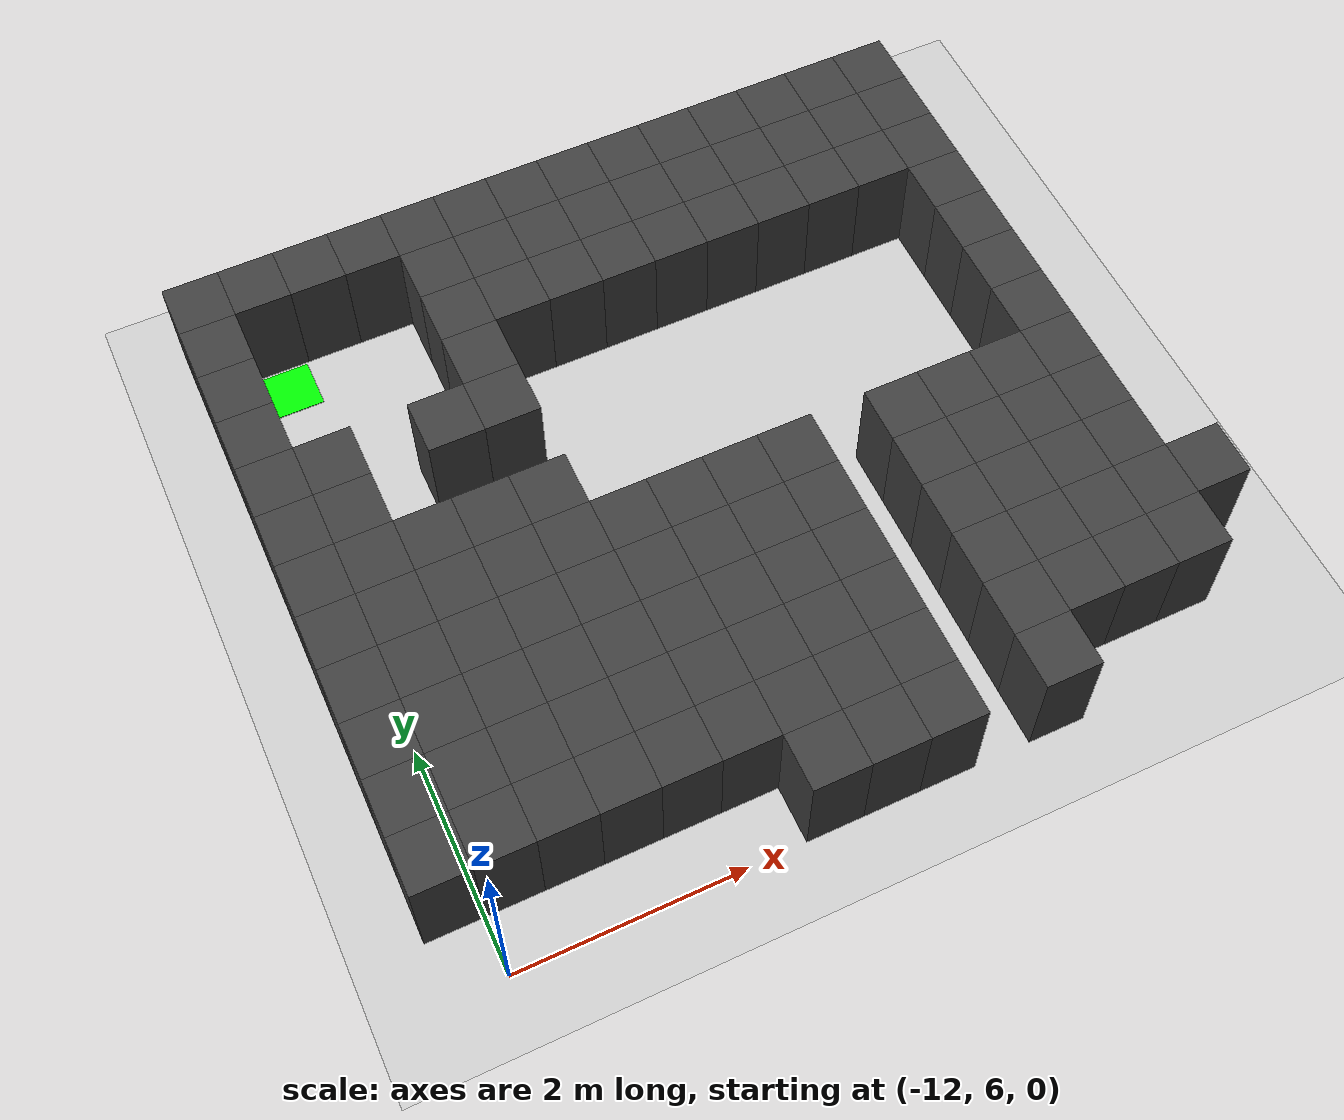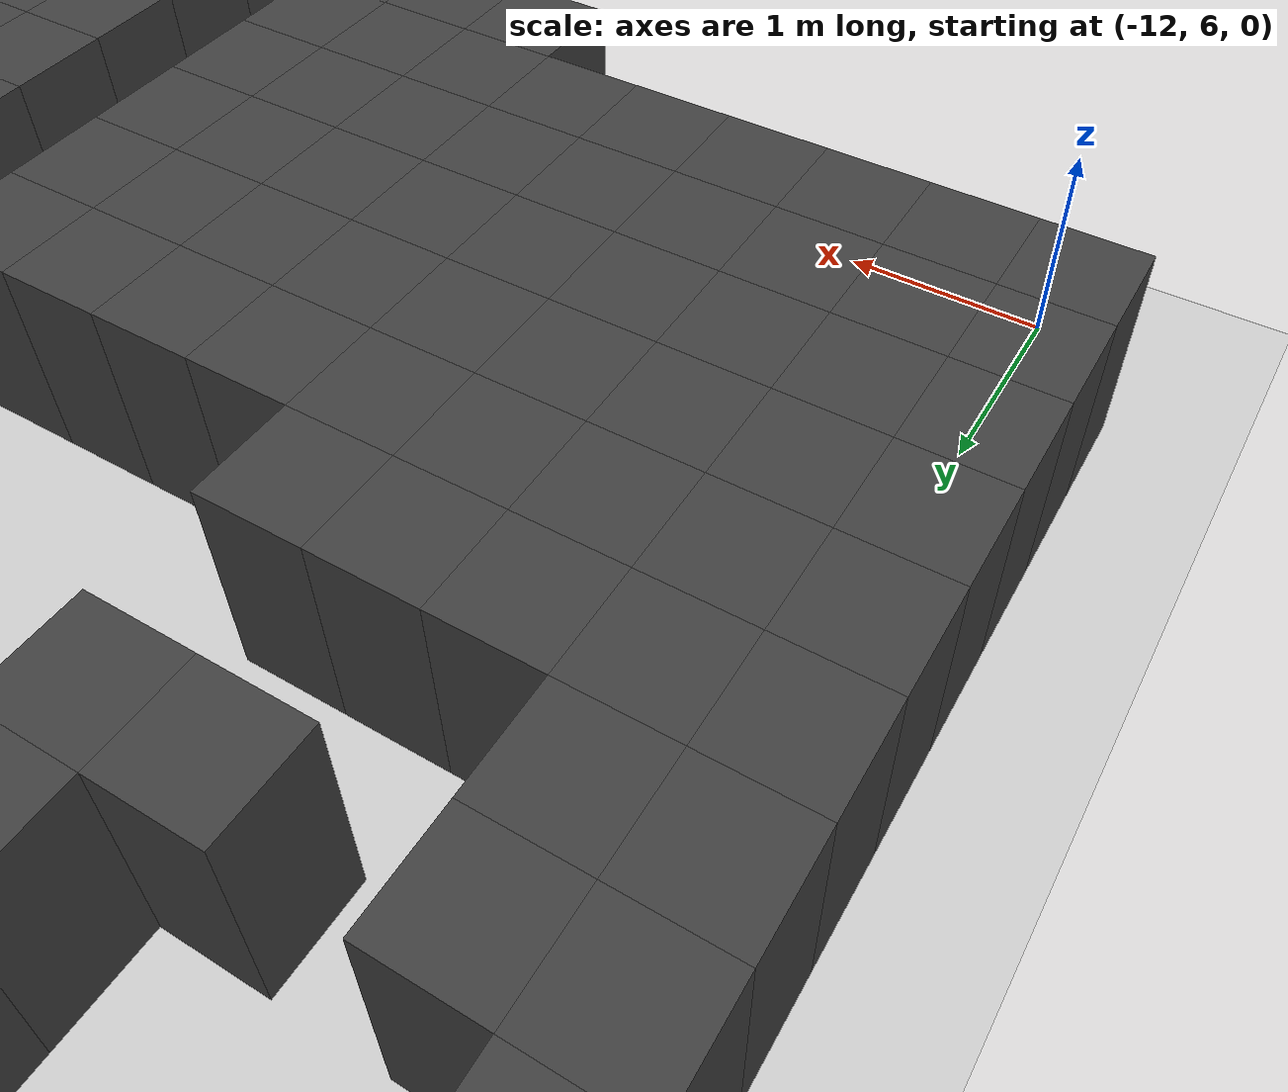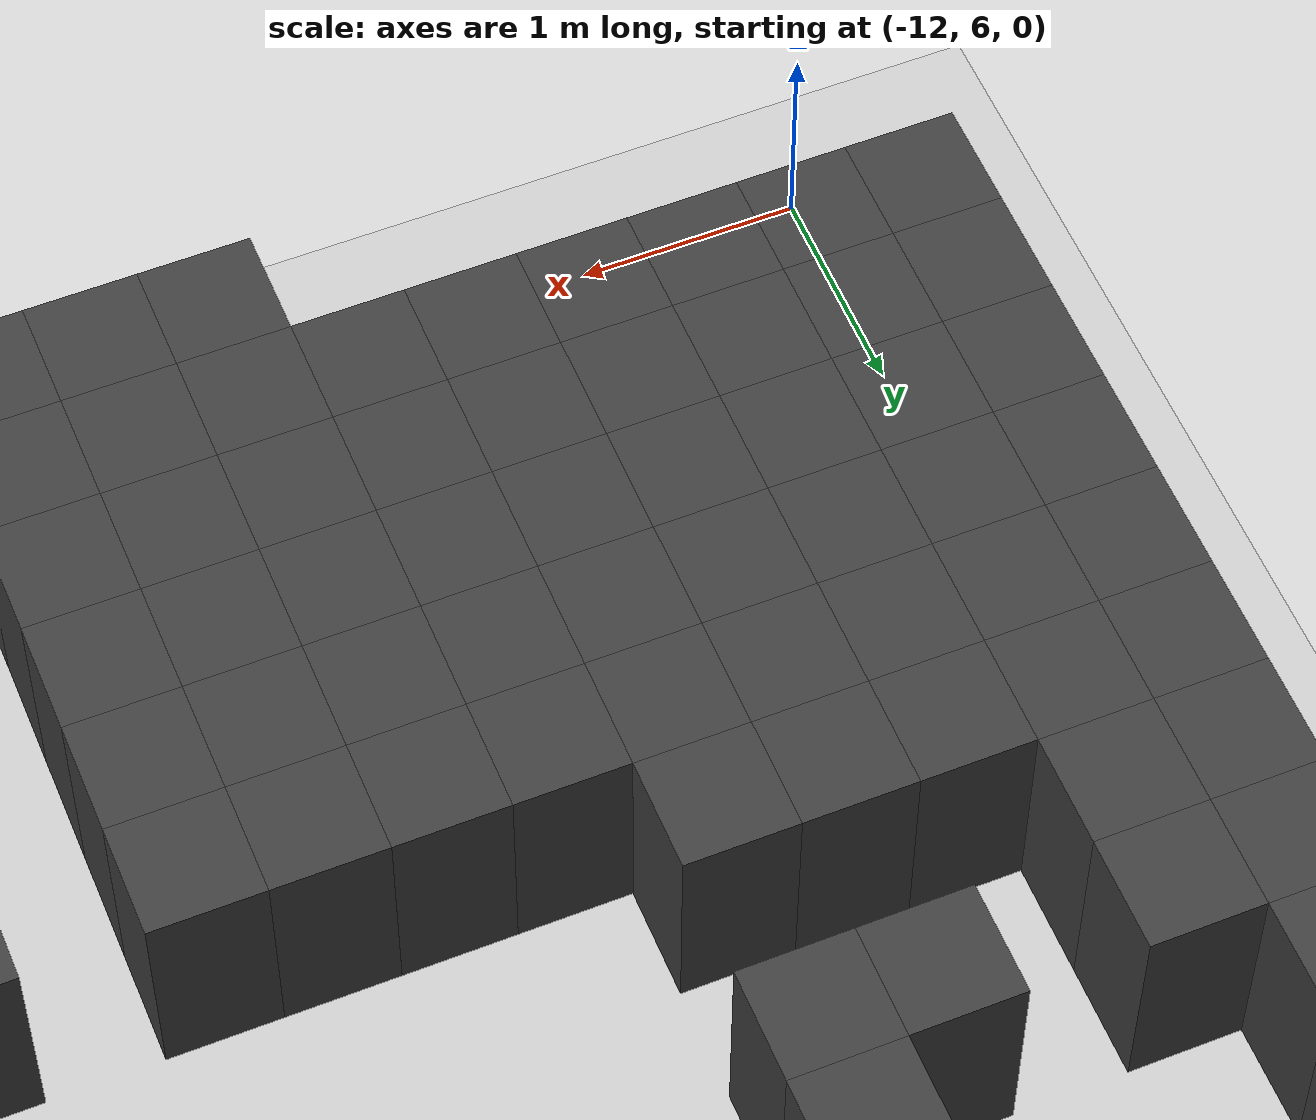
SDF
<sdf version="1.7">
 <world name="map_14668">
  <model name="ground_plane">
   <static>true</static>
   <link name="link">
    <collision name="collision">
     <geometry><plane><normal>0 0 1</normal><size>200 200</size></plane></geometry>
    </collision>
    <visual name="visual">
     <geometry><plane><normal>0 0 1</normal><size>200 200</size></plane></geometry>
     <material><ambient>0.8 0.8 0.8 1</ambient><diffuse>0.8 0.8 0.8 1</diffuse></material>
    </visual>
   </link>
  </model>
  <model name="maze_environment">
   <static>true</static>
   <link name="wall_0">
    <pose>-12.250 12.250 0.500 0 0 0</pose>
    <collision name="col"><geometry><box><size>0.5 0.5 1.0</size></box></geometry></collision>
    <visual name="vis">
     <geometry><box><size>0.5 0.5 1.0</size></box></geometry>
     <material><ambient>0.15 0.15 0.15 1</ambient><diffuse>0.25 0.25 0.25 1</diffuse></material>
    </visual>
   </link>
   <link name="wall_1">
    <pose>-11.750 12.250 0.500 0 0 0</pose>
    <collision name="col"><geometry><box><size>0.5 0.5 1.0</size></box></geometry></collision>
    <visual name="vis">
     <geometry><box><size>0.5 0.5 1.0</size></box></geometry>
     <material><ambient>0.15 0.15 0.15 1</ambient><diffuse>0.25 0.25 0.25 1</diffuse></material>
    </visual>
   </link>
   <link name="wall_2">
    <pose>-11.250 12.250 0.500 0 0 0</pose>
    <collision name="col"><geometry><box><size>0.5 0.5 1.0</size></box></geometry></collision>
    <visual name="vis">
     <geometry><box><size>0.5 0.5 1.0</size></box></geometry>
     <material><ambient>0.15 0.15 0.15 1</ambient><diffuse>0.25 0.25 0.25 1</diffuse></material>
    </visual>
   </link>
   <link name="wall_3">
    <pose>-10.750 12.250 0.500 0 0 0</pose>
    <collision name="col"><geometry><box><size>0.5 0.5 1.0</size></box></geometry></collision>
    <visual name="vis">
     <geometry><box><size>0.5 0.5 1.0</size></box></geometry>
     <material><ambient>0.15 0.15 0.15 1</ambient><diffuse>0.25 0.25 0.25 1</diffuse></material>
    </visual>
   </link>
   <link name="wall_4">
    <pose>-10.250 12.250 0.500 0 0 0</pose>
    <collision name="col"><geometry><box><size>0.5 0.5 1.0</size></box></geometry></collision>
    <visual name="vis">
     <geometry><box><size>0.5 0.5 1.0</size></box></geometry>
     <material><ambient>0.15 0.15 0.15 1</ambient><diffuse>0.25 0.25 0.25 1</diffuse></material>
    </visual>
   </link>
   <link name="wall_5">
    <pose>-9.750 12.250 0.500 0 0 0</pose>
    <collision name="col"><geometry><box><size>0.5 0.5 1.0</size></box></geometry></collision>
    <visual name="vis">
     <geometry><box><size>0.5 0.5 1.0</size></box></geometry>
     <material><ambient>0.15 0.15 0.15 1</ambient><diffuse>0.25 0.25 0.25 1</diffuse></material>
    </visual>
   </link>
   <link name="wall_6">
    <pose>-9.250 12.250 0.500 0 0 0</pose>
    <collision name="col"><geometry><box><size>0.5 0.5 1.0</size></box></geometry></collision>
    <visual name="vis">
     <geometry><box><size>0.5 0.5 1.0</size></box></geometry>
     <material><ambient>0.15 0.15 0.15 1</ambient><diffuse>0.25 0.25 0.25 1</diffuse></material>
    </visual>
   </link>
   <link name="wall_7">
    <pose>-8.750 12.250 0.500 0 0 0</pose>
    <collision name="col"><geometry><box><size>0.5 0.5 1.0</size></box></geometry></collision>
    <visual name="vis">
     <geometry><box><size>0.5 0.5 1.0</size></box></geometry>
     <material><ambient>0.15 0.15 0.15 1</ambient><diffuse>0.25 0.25 0.25 1</diffuse></material>
    </visual>
   </link>
   <link name="wall_8">
    <pose>-8.250 12.250 0.500 0 0 0</pose>
    <collision name="col"><geometry><box><size>0.5 0.5 1.0</size></box></geometry></collision>
    <visual name="vis">
     <geometry><box><size>0.5 0.5 1.0</size></box></geometry>
     <material><ambient>0.15 0.15 0.15 1</ambient><diffuse>0.25 0.25 0.25 1</diffuse></material>
    </visual>
   </link>
   <link name="wall_9">
    <pose>-7.750 12.250 0.500 0 0 0</pose>
    <collision name="col"><geometry><box><size>0.5 0.5 1.0</size></box></geometry></collision>
    <visual name="vis">
     <geometry><box><size>0.5 0.5 1.0</size></box></geometry>
     <material><ambient>0.15 0.15 0.15 1</ambient><diffuse>0.25 0.25 0.25 1</diffuse></material>
    </visual>
   </link>
   <link name="wall_10">
    <pose>-7.250 12.250 0.500 0 0 0</pose>
    <collision name="col"><geometry><box><size>0.5 0.5 1.0</size></box></geometry></collision>
    <visual name="vis">
     <geometry><box><size>0.5 0.5 1.0</size></box></geometry>
     <material><ambient>0.15 0.15 0.15 1</ambient><diffuse>0.25 0.25 0.25 1</diffuse></material>
    </visual>
   </link>
   <link name="wall_11">
    <pose>-6.750 12.250 0.500 0 0 0</pose>
    <collision name="col"><geometry><box><size>0.5 0.5 1.0</size></box></geometry></collision>
    <visual name="vis">
     <geometry><box><size>0.5 0.5 1.0</size></box></geometry>
     <material><ambient>0.15 0.15 0.15 1</ambient><diffuse>0.25 0.25 0.25 1</diffuse></material>
    </visual>
   </link>
   <link name="wall_12">
    <pose>-6.250 12.250 0.500 0 0 0</pose>
    <collision name="col"><geometry><box><size>0.5 0.5 1.0</size></box></geometry></collision>
    <visual name="vis">
     <geometry><box><size>0.5 0.5 1.0</size></box></geometry>
     <material><ambient>0.15 0.15 0.15 1</ambient><diffuse>0.25 0.25 0.25 1</diffuse></material>
    </visual>
   </link>
   <link name="wall_13">
    <pose>-5.750 12.250 0.500 0 0 0</pose>
    <collision name="col"><geometry><box><size>0.5 0.5 1.0</size></box></geometry></collision>
    <visual name="vis">
     <geometry><box><size>0.5 0.5 1.0</size></box></geometry>
     <material><ambient>0.15 0.15 0.15 1</ambient><diffuse>0.25 0.25 0.25 1</diffuse></material>
    </visual>
   </link>
   <link name="wall_50">
    <pose>-12.250 11.750 0.500 0 0 0</pose>
    <collision name="col"><geometry><box><size>0.5 0.5 1.0</size></box></geometry></collision>
    <visual name="vis">
     <geometry><box><size>0.5 0.5 1.0</size></box></geometry>
     <material><ambient>0.15 0.15 0.15 1</ambient><diffuse>0.25 0.25 0.25 1</diffuse></material>
    </visual>
   </link>
   <link name="wall_51">
    <pose>-10.250 11.750 0.500 0 0 0</pose>
    <collision name="col"><geometry><box><size>0.5 0.5 1.0</size></box></geometry></collision>
    <visual name="vis">
     <geometry><box><size>0.5 0.5 1.0</size></box></geometry>
     <material><ambient>0.15 0.15 0.15 1</ambient><diffuse>0.25 0.25 0.25 1</diffuse></material>
    </visual>
   </link>
   <link name="wall_52">
    <pose>-9.750 11.750 0.500 0 0 0</pose>
    <collision name="col"><geometry><box><size>0.5 0.5 1.0</size></box></geometry></collision>
    <visual name="vis">
     <geometry><box><size>0.5 0.5 1.0</size></box></geometry>
     <material><ambient>0.15 0.15 0.15 1</ambient><diffuse>0.25 0.25 0.25 1</diffuse></material>
    </visual>
   </link>
   <link name="wall_53">
    <pose>-9.250 11.750 0.500 0 0 0</pose>
    <collision name="col"><geometry><box><size>0.5 0.5 1.0</size></box></geometry></collision>
    <visual name="vis">
     <geometry><box><size>0.5 0.5 1.0</size></box></geometry>
     <material><ambient>0.15 0.15 0.15 1</ambient><diffuse>0.25 0.25 0.25 1</diffuse></material>
    </visual>
   </link>
   <link name="wall_54">
    <pose>-8.750 11.750 0.500 0 0 0</pose>
    <collision name="col"><geometry><box><size>0.5 0.5 1.0</size></box></geometry></collision>
    <visual name="vis">
     <geometry><box><size>0.5 0.5 1.0</size></box></geometry>
     <material><ambient>0.15 0.15 0.15 1</ambient><diffuse>0.25 0.25 0.25 1</diffuse></material>
    </visual>
   </link>
   <link name="wall_55">
    <pose>-8.250 11.750 0.500 0 0 0</pose>
    <collision name="col"><geometry><box><size>0.5 0.5 1.0</size></box></geometry></collision>
    <visual name="vis">
     <geometry><box><size>0.5 0.5 1.0</size></box></geometry>
     <material><ambient>0.15 0.15 0.15 1</ambient><diffuse>0.25 0.25 0.25 1</diffuse></material>
    </visual>
   </link>
   <link name="wall_56">
    <pose>-7.750 11.750 0.500 0 0 0</pose>
    <collision name="col"><geometry><box><size>0.5 0.5 1.0</size></box></geometry></collision>
    <visual name="vis">
     <geometry><box><size>0.5 0.5 1.0</size></box></geometry>
     <material><ambient>0.15 0.15 0.15 1</ambient><diffuse>0.25 0.25 0.25 1</diffuse></material>
    </visual>
   </link>
   <link name="wall_57">
    <pose>-7.250 11.750 0.500 0 0 0</pose>
    <collision name="col"><geometry><box><size>0.5 0.5 1.0</size></box></geometry></collision>
    <visual name="vis">
     <geometry><box><size>0.5 0.5 1.0</size></box></geometry>
     <material><ambient>0.15 0.15 0.15 1</ambient><diffuse>0.25 0.25 0.25 1</diffuse></material>
    </visual>
   </link>
   <link name="wall_58">
    <pose>-6.750 11.750 0.500 0 0 0</pose>
    <collision name="col"><geometry><box><size>0.5 0.5 1.0</size></box></geometry></collision>
    <visual name="vis">
     <geometry><box><size>0.5 0.5 1.0</size></box></geometry>
     <material><ambient>0.15 0.15 0.15 1</ambient><diffuse>0.25 0.25 0.25 1</diffuse></material>
    </visual>
   </link>
   <link name="wall_59">
    <pose>-6.250 11.750 0.500 0 0 0</pose>
    <collision name="col"><geometry><box><size>0.5 0.5 1.0</size></box></geometry></collision>
    <visual name="vis">
     <geometry><box><size>0.5 0.5 1.0</size></box></geometry>
     <material><ambient>0.15 0.15 0.15 1</ambient><diffuse>0.25 0.25 0.25 1</diffuse></material>
    </visual>
   </link>
   <link name="wall_60">
    <pose>-5.750 11.750 0.500 0 0 0</pose>
    <collision name="col"><geometry><box><size>0.5 0.5 1.0</size></box></geometry></collision>
    <visual name="vis">
     <geometry><box><size>0.5 0.5 1.0</size></box></geometry>
     <material><ambient>0.15 0.15 0.15 1</ambient><diffuse>0.25 0.25 0.25 1</diffuse></material>
    </visual>
   </link>
   <link name="wall_97">
    <pose>-12.250 11.250 0.500 0 0 0</pose>
    <collision name="col"><geometry><box><size>0.5 0.5 1.0</size></box></geometry></collision>
    <visual name="vis">
     <geometry><box><size>0.5 0.5 1.0</size></box></geometry>
     <material><ambient>0.15 0.15 0.15 1</ambient><diffuse>0.25 0.25 0.25 1</diffuse></material>
    </visual>
   </link>
   <link name="wall_98">
    <pose>-10.250 11.250 0.500 0 0 0</pose>
    <collision name="col"><geometry><box><size>0.5 0.5 1.0</size></box></geometry></collision>
    <visual name="vis">
     <geometry><box><size>0.5 0.5 1.0</size></box></geometry>
     <material><ambient>0.15 0.15 0.15 1</ambient><diffuse>0.25 0.25 0.25 1</diffuse></material>
    </visual>
   </link>
   <link name="wall_99">
    <pose>-9.750 11.250 0.500 0 0 0</pose>
    <collision name="col"><geometry><box><size>0.5 0.5 1.0</size></box></geometry></collision>
    <visual name="vis">
     <geometry><box><size>0.5 0.5 1.0</size></box></geometry>
     <material><ambient>0.15 0.15 0.15 1</ambient><diffuse>0.25 0.25 0.25 1</diffuse></material>
    </visual>
   </link>
   <link name="wall_100">
    <pose>-9.250 11.250 0.500 0 0 0</pose>
    <collision name="col"><geometry><box><size>0.5 0.5 1.0</size></box></geometry></collision>
    <visual name="vis">
     <geometry><box><size>0.5 0.5 1.0</size></box></geometry>
     <material><ambient>0.15 0.15 0.15 1</ambient><diffuse>0.25 0.25 0.25 1</diffuse></material>
    </visual>
   </link>
   <link name="wall_101">
    <pose>-8.750 11.250 0.500 0 0 0</pose>
    <collision name="col"><geometry><box><size>0.5 0.5 1.0</size></box></geometry></collision>
    <visual name="vis">
     <geometry><box><size>0.5 0.5 1.0</size></box></geometry>
     <material><ambient>0.15 0.15 0.15 1</ambient><diffuse>0.25 0.25 0.25 1</diffuse></material>
    </visual>
   </link>
   <link name="wall_102">
    <pose>-8.250 11.250 0.500 0 0 0</pose>
    <collision name="col"><geometry><box><size>0.5 0.5 1.0</size></box></geometry></collision>
    <visual name="vis">
     <geometry><box><size>0.5 0.5 1.0</size></box></geometry>
     <material><ambient>0.15 0.15 0.15 1</ambient><diffuse>0.25 0.25 0.25 1</diffuse></material>
    </visual>
   </link>
   <link name="wall_103">
    <pose>-7.750 11.250 0.500 0 0 0</pose>
    <collision name="col"><geometry><box><size>0.5 0.5 1.0</size></box></geometry></collision>
    <visual name="vis">
     <geometry><box><size>0.5 0.5 1.0</size></box></geometry>
     <material><ambient>0.15 0.15 0.15 1</ambient><diffuse>0.25 0.25 0.25 1</diffuse></material>
    </visual>
   </link>
   <link name="wall_104">
    <pose>-7.250 11.250 0.500 0 0 0</pose>
    <collision name="col"><geometry><box><size>0.5 0.5 1.0</size></box></geometry></collision>
    <visual name="vis">
     <geometry><box><size>0.5 0.5 1.0</size></box></geometry>
     <material><ambient>0.15 0.15 0.15 1</ambient><diffuse>0.25 0.25 0.25 1</diffuse></material>
    </visual>
   </link>
   <link name="wall_105">
    <pose>-6.750 11.250 0.500 0 0 0</pose>
    <collision name="col"><geometry><box><size>0.5 0.5 1.0</size></box></geometry></collision>
    <visual name="vis">
     <geometry><box><size>0.5 0.5 1.0</size></box></geometry>
     <material><ambient>0.15 0.15 0.15 1</ambient><diffuse>0.25 0.25 0.25 1</diffuse></material>
    </visual>
   </link>
   <link name="wall_106">
    <pose>-6.250 11.250 0.500 0 0 0</pose>
    <collision name="col"><geometry><box><size>0.5 0.5 1.0</size></box></geometry></collision>
    <visual name="vis">
     <geometry><box><size>0.5 0.5 1.0</size></box></geometry>
     <material><ambient>0.15 0.15 0.15 1</ambient><diffuse>0.25 0.25 0.25 1</diffuse></material>
    </visual>
   </link>
   <link name="wall_107">
    <pose>-5.750 11.250 0.500 0 0 0</pose>
    <collision name="col"><geometry><box><size>0.5 0.5 1.0</size></box></geometry></collision>
    <visual name="vis">
     <geometry><box><size>0.5 0.5 1.0</size></box></geometry>
     <material><ambient>0.15 0.15 0.15 1</ambient><diffuse>0.25 0.25 0.25 1</diffuse></material>
    </visual>
   </link>
   <link name="wall_144">
    <pose>-12.250 10.750 0.500 0 0 0</pose>
    <collision name="col"><geometry><box><size>0.5 0.5 1.0</size></box></geometry></collision>
    <visual name="vis">
     <geometry><box><size>0.5 0.5 1.0</size></box></geometry>
     <material><ambient>0.15 0.15 0.15 1</ambient><diffuse>0.25 0.25 0.25 1</diffuse></material>
    </visual>
   </link>
   <link name="wall_145">
    <pose>-10.250 10.750 0.500 0 0 0</pose>
    <collision name="col"><geometry><box><size>0.5 0.5 1.0</size></box></geometry></collision>
    <visual name="vis">
     <geometry><box><size>0.5 0.5 1.0</size></box></geometry>
     <material><ambient>0.15 0.15 0.15 1</ambient><diffuse>0.25 0.25 0.25 1</diffuse></material>
    </visual>
   </link>
   <link name="wall_146">
    <pose>-5.750 10.750 0.500 0 0 0</pose>
    <collision name="col"><geometry><box><size>0.5 0.5 1.0</size></box></geometry></collision>
    <visual name="vis">
     <geometry><box><size>0.5 0.5 1.0</size></box></geometry>
     <material><ambient>0.15 0.15 0.15 1</ambient><diffuse>0.25 0.25 0.25 1</diffuse></material>
    </visual>
   </link>
   <link name="wall_183">
    <pose>-12.250 10.250 0.500 0 0 0</pose>
    <collision name="col"><geometry><box><size>0.5 0.5 1.0</size></box></geometry></collision>
    <visual name="vis">
     <geometry><box><size>0.5 0.5 1.0</size></box></geometry>
     <material><ambient>0.15 0.15 0.15 1</ambient><diffuse>0.25 0.25 0.25 1</diffuse></material>
    </visual>
   </link>
   <link name="wall_184">
    <pose>-11.750 10.250 0.500 0 0 0</pose>
    <collision name="col"><geometry><box><size>0.5 0.5 1.0</size></box></geometry></collision>
    <visual name="vis">
     <geometry><box><size>0.5 0.5 1.0</size></box></geometry>
     <material><ambient>0.15 0.15 0.15 1</ambient><diffuse>0.25 0.25 0.25 1</diffuse></material>
    </visual>
   </link>
   <link name="wall_185">
    <pose>-10.750 10.250 0.500 0 0 0</pose>
    <collision name="col"><geometry><box><size>0.5 0.5 1.0</size></box></geometry></collision>
    <visual name="vis">
     <geometry><box><size>0.5 0.5 1.0</size></box></geometry>
     <material><ambient>0.15 0.15 0.15 1</ambient><diffuse>0.25 0.25 0.25 1</diffuse></material>
    </visual>
   </link>
   <link name="wall_186">
    <pose>-10.250 10.250 0.500 0 0 0</pose>
    <collision name="col"><geometry><box><size>0.5 0.5 1.0</size></box></geometry></collision>
    <visual name="vis">
     <geometry><box><size>0.5 0.5 1.0</size></box></geometry>
     <material><ambient>0.15 0.15 0.15 1</ambient><diffuse>0.25 0.25 0.25 1</diffuse></material>
    </visual>
   </link>
   <link name="wall_187">
    <pose>-5.750 10.250 0.500 0 0 0</pose>
    <collision name="col"><geometry><box><size>0.5 0.5 1.0</size></box></geometry></collision>
    <visual name="vis">
     <geometry><box><size>0.5 0.5 1.0</size></box></geometry>
     <material><ambient>0.15 0.15 0.15 1</ambient><diffuse>0.25 0.25 0.25 1</diffuse></material>
    </visual>
   </link>
   <link name="wall_224">
    <pose>-12.250 9.750 0.500 0 0 0</pose>
    <collision name="col"><geometry><box><size>0.5 0.5 1.0</size></box></geometry></collision>
    <visual name="vis">
     <geometry><box><size>0.5 0.5 1.0</size></box></geometry>
     <material><ambient>0.15 0.15 0.15 1</ambient><diffuse>0.25 0.25 0.25 1</diffuse></material>
    </visual>
   </link>
   <link name="wall_225">
    <pose>-11.750 9.750 0.500 0 0 0</pose>
    <collision name="col"><geometry><box><size>0.5 0.5 1.0</size></box></geometry></collision>
    <visual name="vis">
     <geometry><box><size>0.5 0.5 1.0</size></box></geometry>
     <material><ambient>0.15 0.15 0.15 1</ambient><diffuse>0.25 0.25 0.25 1</diffuse></material>
    </visual>
   </link>
   <link name="wall_226">
    <pose>-5.750 9.750 0.500 0 0 0</pose>
    <collision name="col"><geometry><box><size>0.5 0.5 1.0</size></box></geometry></collision>
    <visual name="vis">
     <geometry><box><size>0.5 0.5 1.0</size></box></geometry>
     <material><ambient>0.15 0.15 0.15 1</ambient><diffuse>0.25 0.25 0.25 1</diffuse></material>
    </visual>
   </link>
   <link name="wall_251">
    <pose>-12.250 9.250 0.500 0 0 0</pose>
    <collision name="col"><geometry><box><size>0.5 0.5 1.0</size></box></geometry></collision>
    <visual name="vis">
     <geometry><box><size>0.5 0.5 1.0</size></box></geometry>
     <material><ambient>0.15 0.15 0.15 1</ambient><diffuse>0.25 0.25 0.25 1</diffuse></material>
    </visual>
   </link>
   <link name="wall_252">
    <pose>-11.750 9.250 0.500 0 0 0</pose>
    <collision name="col"><geometry><box><size>0.5 0.5 1.0</size></box></geometry></collision>
    <visual name="vis">
     <geometry><box><size>0.5 0.5 1.0</size></box></geometry>
     <material><ambient>0.15 0.15 0.15 1</ambient><diffuse>0.25 0.25 0.25 1</diffuse></material>
    </visual>
   </link>
   <link name="wall_253">
    <pose>-11.250 9.250 0.500 0 0 0</pose>
    <collision name="col"><geometry><box><size>0.5 0.5 1.0</size></box></geometry></collision>
    <visual name="vis">
     <geometry><box><size>0.5 0.5 1.0</size></box></geometry>
     <material><ambient>0.15 0.15 0.15 1</ambient><diffuse>0.25 0.25 0.25 1</diffuse></material>
    </visual>
   </link>
   <link name="wall_254">
    <pose>-10.750 9.250 0.500 0 0 0</pose>
    <collision name="col"><geometry><box><size>0.5 0.5 1.0</size></box></geometry></collision>
    <visual name="vis">
     <geometry><box><size>0.5 0.5 1.0</size></box></geometry>
     <material><ambient>0.15 0.15 0.15 1</ambient><diffuse>0.25 0.25 0.25 1</diffuse></material>
    </visual>
   </link>
   <link name="wall_255">
    <pose>-10.250 9.250 0.500 0 0 0</pose>
    <collision name="col"><geometry><box><size>0.5 0.5 1.0</size></box></geometry></collision>
    <visual name="vis">
     <geometry><box><size>0.5 0.5 1.0</size></box></geometry>
     <material><ambient>0.15 0.15 0.15 1</ambient><diffuse>0.25 0.25 0.25 1</diffuse></material>
    </visual>
   </link>
   <link name="wall_256">
    <pose>-5.750 9.250 0.500 0 0 0</pose>
    <collision name="col"><geometry><box><size>0.5 0.5 1.0</size></box></geometry></collision>
    <visual name="vis">
     <geometry><box><size>0.5 0.5 1.0</size></box></geometry>
     <material><ambient>0.15 0.15 0.15 1</ambient><diffuse>0.25 0.25 0.25 1</diffuse></material>
    </visual>
   </link>
   <link name="wall_281">
    <pose>-12.250 8.750 0.500 0 0 0</pose>
    <collision name="col"><geometry><box><size>0.5 0.5 1.0</size></box></geometry></collision>
    <visual name="vis">
     <geometry><box><size>0.5 0.5 1.0</size></box></geometry>
     <material><ambient>0.15 0.15 0.15 1</ambient><diffuse>0.25 0.25 0.25 1</diffuse></material>
    </visual>
   </link>
   <link name="wall_282">
    <pose>-11.750 8.750 0.500 0 0 0</pose>
    <collision name="col"><geometry><box><size>0.5 0.5 1.0</size></box></geometry></collision>
    <visual name="vis">
     <geometry><box><size>0.5 0.5 1.0</size></box></geometry>
     <material><ambient>0.15 0.15 0.15 1</ambient><diffuse>0.25 0.25 0.25 1</diffuse></material>
    </visual>
   </link>
   <link name="wall_283">
    <pose>-11.250 8.750 0.500 0 0 0</pose>
    <collision name="col"><geometry><box><size>0.5 0.5 1.0</size></box></geometry></collision>
    <visual name="vis">
     <geometry><box><size>0.5 0.5 1.0</size></box></geometry>
     <material><ambient>0.15 0.15 0.15 1</ambient><diffuse>0.25 0.25 0.25 1</diffuse></material>
    </visual>
   </link>
   <link name="wall_284">
    <pose>-10.750 8.750 0.500 0 0 0</pose>
    <collision name="col"><geometry><box><size>0.5 0.5 1.0</size></box></geometry></collision>
    <visual name="vis">
     <geometry><box><size>0.5 0.5 1.0</size></box></geometry>
     <material><ambient>0.15 0.15 0.15 1</ambient><diffuse>0.25 0.25 0.25 1</diffuse></material>
    </visual>
   </link>
   <link name="wall_285">
    <pose>-10.250 8.750 0.500 0 0 0</pose>
    <collision name="col"><geometry><box><size>0.5 0.5 1.0</size></box></geometry></collision>
    <visual name="vis">
     <geometry><box><size>0.5 0.5 1.0</size></box></geometry>
     <material><ambient>0.15 0.15 0.15 1</ambient><diffuse>0.25 0.25 0.25 1</diffuse></material>
    </visual>
   </link>
   <link name="wall_286">
    <pose>-9.750 8.750 0.500 0 0 0</pose>
    <collision name="col"><geometry><box><size>0.5 0.5 1.0</size></box></geometry></collision>
    <visual name="vis">
     <geometry><box><size>0.5 0.5 1.0</size></box></geometry>
     <material><ambient>0.15 0.15 0.15 1</ambient><diffuse>0.25 0.25 0.25 1</diffuse></material>
    </visual>
   </link>
   <link name="wall_287">
    <pose>-9.250 8.750 0.500 0 0 0</pose>
    <collision name="col"><geometry><box><size>0.5 0.5 1.0</size></box></geometry></collision>
    <visual name="vis">
     <geometry><box><size>0.5 0.5 1.0</size></box></geometry>
     <material><ambient>0.15 0.15 0.15 1</ambient><diffuse>0.25 0.25 0.25 1</diffuse></material>
    </visual>
   </link>
   <link name="wall_288">
    <pose>-8.750 8.750 0.500 0 0 0</pose>
    <collision name="col"><geometry><box><size>0.5 0.5 1.0</size></box></geometry></collision>
    <visual name="vis">
     <geometry><box><size>0.5 0.5 1.0</size></box></geometry>
     <material><ambient>0.15 0.15 0.15 1</ambient><diffuse>0.25 0.25 0.25 1</diffuse></material>
    </visual>
   </link>
   <link name="wall_289">
    <pose>-8.250 8.750 0.500 0 0 0</pose>
    <collision name="col"><geometry><box><size>0.5 0.5 1.0</size></box></geometry></collision>
    <visual name="vis">
     <geometry><box><size>0.5 0.5 1.0</size></box></geometry>
     <material><ambient>0.15 0.15 0.15 1</ambient><diffuse>0.25 0.25 0.25 1</diffuse></material>
    </visual>
   </link>
   <link name="wall_290">
    <pose>-7.250 8.750 0.500 0 0 0</pose>
    <collision name="col"><geometry><box><size>0.5 0.5 1.0</size></box></geometry></collision>
    <visual name="vis">
     <geometry><box><size>0.5 0.5 1.0</size></box></geometry>
     <material><ambient>0.15 0.15 0.15 1</ambient><diffuse>0.25 0.25 0.25 1</diffuse></material>
    </visual>
   </link>
   <link name="wall_291">
    <pose>-6.750 8.750 0.500 0 0 0</pose>
    <collision name="col"><geometry><box><size>0.5 0.5 1.0</size></box></geometry></collision>
    <visual name="vis">
     <geometry><box><size>0.5 0.5 1.0</size></box></geometry>
     <material><ambient>0.15 0.15 0.15 1</ambient><diffuse>0.25 0.25 0.25 1</diffuse></material>
    </visual>
   </link>
   <link name="wall_292">
    <pose>-6.250 8.750 0.500 0 0 0</pose>
    <collision name="col"><geometry><box><size>0.5 0.5 1.0</size></box></geometry></collision>
    <visual name="vis">
     <geometry><box><size>0.5 0.5 1.0</size></box></geometry>
     <material><ambient>0.15 0.15 0.15 1</ambient><diffuse>0.25 0.25 0.25 1</diffuse></material>
    </visual>
   </link>
   <link name="wall_293">
    <pose>-5.750 8.750 0.500 0 0 0</pose>
    <collision name="col"><geometry><box><size>0.5 0.5 1.0</size></box></geometry></collision>
    <visual name="vis">
     <geometry><box><size>0.5 0.5 1.0</size></box></geometry>
     <material><ambient>0.15 0.15 0.15 1</ambient><diffuse>0.25 0.25 0.25 1</diffuse></material>
    </visual>
   </link>
   <link name="wall_318">
    <pose>-12.250 8.250 0.500 0 0 0</pose>
    <collision name="col"><geometry><box><size>0.5 0.5 1.0</size></box></geometry></collision>
    <visual name="vis">
     <geometry><box><size>0.5 0.5 1.0</size></box></geometry>
     <material><ambient>0.15 0.15 0.15 1</ambient><diffuse>0.25 0.25 0.25 1</diffuse></material>
    </visual>
   </link>
   <link name="wall_319">
    <pose>-11.750 8.250 0.500 0 0 0</pose>
    <collision name="col"><geometry><box><size>0.5 0.5 1.0</size></box></geometry></collision>
    <visual name="vis">
     <geometry><box><size>0.5 0.5 1.0</size></box></geometry>
     <material><ambient>0.15 0.15 0.15 1</ambient><diffuse>0.25 0.25 0.25 1</diffuse></material>
    </visual>
   </link>
   <link name="wall_320">
    <pose>-11.250 8.250 0.500 0 0 0</pose>
    <collision name="col"><geometry><box><size>0.5 0.5 1.0</size></box></geometry></collision>
    <visual name="vis">
     <geometry><box><size>0.5 0.5 1.0</size></box></geometry>
     <material><ambient>0.15 0.15 0.15 1</ambient><diffuse>0.25 0.25 0.25 1</diffuse></material>
    </visual>
   </link>
   <link name="wall_321">
    <pose>-10.750 8.250 0.500 0 0 0</pose>
    <collision name="col"><geometry><box><size>0.5 0.5 1.0</size></box></geometry></collision>
    <visual name="vis">
     <geometry><box><size>0.5 0.5 1.0</size></box></geometry>
     <material><ambient>0.15 0.15 0.15 1</ambient><diffuse>0.25 0.25 0.25 1</diffuse></material>
    </visual>
   </link>
   <link name="wall_322">
    <pose>-10.250 8.250 0.500 0 0 0</pose>
    <collision name="col"><geometry><box><size>0.5 0.5 1.0</size></box></geometry></collision>
    <visual name="vis">
     <geometry><box><size>0.5 0.5 1.0</size></box></geometry>
     <material><ambient>0.15 0.15 0.15 1</ambient><diffuse>0.25 0.25 0.25 1</diffuse></material>
    </visual>
   </link>
   <link name="wall_323">
    <pose>-9.750 8.250 0.500 0 0 0</pose>
    <collision name="col"><geometry><box><size>0.5 0.5 1.0</size></box></geometry></collision>
    <visual name="vis">
     <geometry><box><size>0.5 0.5 1.0</size></box></geometry>
     <material><ambient>0.15 0.15 0.15 1</ambient><diffuse>0.25 0.25 0.25 1</diffuse></material>
    </visual>
   </link>
   <link name="wall_324">
    <pose>-9.250 8.250 0.500 0 0 0</pose>
    <collision name="col"><geometry><box><size>0.5 0.5 1.0</size></box></geometry></collision>
    <visual name="vis">
     <geometry><box><size>0.5 0.5 1.0</size></box></geometry>
     <material><ambient>0.15 0.15 0.15 1</ambient><diffuse>0.25 0.25 0.25 1</diffuse></material>
    </visual>
   </link>
   <link name="wall_325">
    <pose>-8.750 8.250 0.500 0 0 0</pose>
    <collision name="col"><geometry><box><size>0.5 0.5 1.0</size></box></geometry></collision>
    <visual name="vis">
     <geometry><box><size>0.5 0.5 1.0</size></box></geometry>
     <material><ambient>0.15 0.15 0.15 1</ambient><diffuse>0.25 0.25 0.25 1</diffuse></material>
    </visual>
   </link>
   <link name="wall_326">
    <pose>-8.250 8.250 0.500 0 0 0</pose>
    <collision name="col"><geometry><box><size>0.5 0.5 1.0</size></box></geometry></collision>
    <visual name="vis">
     <geometry><box><size>0.5 0.5 1.0</size></box></geometry>
     <material><ambient>0.15 0.15 0.15 1</ambient><diffuse>0.25 0.25 0.25 1</diffuse></material>
    </visual>
   </link>
   <link name="wall_327">
    <pose>-7.250 8.250 0.500 0 0 0</pose>
    <collision name="col"><geometry><box><size>0.5 0.5 1.0</size></box></geometry></collision>
    <visual name="vis">
     <geometry><box><size>0.5 0.5 1.0</size></box></geometry>
     <material><ambient>0.15 0.15 0.15 1</ambient><diffuse>0.25 0.25 0.25 1</diffuse></material>
    </visual>
   </link>
   <link name="wall_328">
    <pose>-6.750 8.250 0.500 0 0 0</pose>
    <collision name="col"><geometry><box><size>0.5 0.5 1.0</size></box></geometry></collision>
    <visual name="vis">
     <geometry><box><size>0.5 0.5 1.0</size></box></geometry>
     <material><ambient>0.15 0.15 0.15 1</ambient><diffuse>0.25 0.25 0.25 1</diffuse></material>
    </visual>
   </link>
   <link name="wall_329">
    <pose>-6.250 8.250 0.500 0 0 0</pose>
    <collision name="col"><geometry><box><size>0.5 0.5 1.0</size></box></geometry></collision>
    <visual name="vis">
     <geometry><box><size>0.5 0.5 1.0</size></box></geometry>
     <material><ambient>0.15 0.15 0.15 1</ambient><diffuse>0.25 0.25 0.25 1</diffuse></material>
    </visual>
   </link>
   <link name="wall_330">
    <pose>-5.750 8.250 0.500 0 0 0</pose>
    <collision name="col"><geometry><box><size>0.5 0.5 1.0</size></box></geometry></collision>
    <visual name="vis">
     <geometry><box><size>0.5 0.5 1.0</size></box></geometry>
     <material><ambient>0.15 0.15 0.15 1</ambient><diffuse>0.25 0.25 0.25 1</diffuse></material>
    </visual>
   </link>
   <link name="wall_352">
    <pose>-12.250 7.750 0.500 0 0 0</pose>
    <collision name="col"><geometry><box><size>0.5 0.5 1.0</size></box></geometry></collision>
    <visual name="vis">
     <geometry><box><size>0.5 0.5 1.0</size></box></geometry>
     <material><ambient>0.15 0.15 0.15 1</ambient><diffuse>0.25 0.25 0.25 1</diffuse></material>
    </visual>
   </link>
   <link name="wall_353">
    <pose>-11.750 7.750 0.500 0 0 0</pose>
    <collision name="col"><geometry><box><size>0.5 0.5 1.0</size></box></geometry></collision>
    <visual name="vis">
     <geometry><box><size>0.5 0.5 1.0</size></box></geometry>
     <material><ambient>0.15 0.15 0.15 1</ambient><diffuse>0.25 0.25 0.25 1</diffuse></material>
    </visual>
   </link>
   <link name="wall_354">
    <pose>-11.250 7.750 0.500 0 0 0</pose>
    <collision name="col"><geometry><box><size>0.5 0.5 1.0</size></box></geometry></collision>
    <visual name="vis">
     <geometry><box><size>0.5 0.5 1.0</size></box></geometry>
     <material><ambient>0.15 0.15 0.15 1</ambient><diffuse>0.25 0.25 0.25 1</diffuse></material>
    </visual>
   </link>
   <link name="wall_355">
    <pose>-10.750 7.750 0.500 0 0 0</pose>
    <collision name="col"><geometry><box><size>0.5 0.5 1.0</size></box></geometry></collision>
    <visual name="vis">
     <geometry><box><size>0.5 0.5 1.0</size></box></geometry>
     <material><ambient>0.15 0.15 0.15 1</ambient><diffuse>0.25 0.25 0.25 1</diffuse></material>
    </visual>
   </link>
   <link name="wall_356">
    <pose>-10.250 7.750 0.500 0 0 0</pose>
    <collision name="col"><geometry><box><size>0.5 0.5 1.0</size></box></geometry></collision>
    <visual name="vis">
     <geometry><box><size>0.5 0.5 1.0</size></box></geometry>
     <material><ambient>0.15 0.15 0.15 1</ambient><diffuse>0.25 0.25 0.25 1</diffuse></material>
    </visual>
   </link>
   <link name="wall_357">
    <pose>-9.750 7.750 0.500 0 0 0</pose>
    <collision name="col"><geometry><box><size>0.5 0.5 1.0</size></box></geometry></collision>
    <visual name="vis">
     <geometry><box><size>0.5 0.5 1.0</size></box></geometry>
     <material><ambient>0.15 0.15 0.15 1</ambient><diffuse>0.25 0.25 0.25 1</diffuse></material>
    </visual>
   </link>
   <link name="wall_358">
    <pose>-9.250 7.750 0.500 0 0 0</pose>
    <collision name="col"><geometry><box><size>0.5 0.5 1.0</size></box></geometry></collision>
    <visual name="vis">
     <geometry><box><size>0.5 0.5 1.0</size></box></geometry>
     <material><ambient>0.15 0.15 0.15 1</ambient><diffuse>0.25 0.25 0.25 1</diffuse></material>
    </visual>
   </link>
   <link name="wall_359">
    <pose>-8.750 7.750 0.500 0 0 0</pose>
    <collision name="col"><geometry><box><size>0.5 0.5 1.0</size></box></geometry></collision>
    <visual name="vis">
     <geometry><box><size>0.5 0.5 1.0</size></box></geometry>
     <material><ambient>0.15 0.15 0.15 1</ambient><diffuse>0.25 0.25 0.25 1</diffuse></material>
    </visual>
   </link>
   <link name="wall_360">
    <pose>-8.250 7.750 0.500 0 0 0</pose>
    <collision name="col"><geometry><box><size>0.5 0.5 1.0</size></box></geometry></collision>
    <visual name="vis">
     <geometry><box><size>0.5 0.5 1.0</size></box></geometry>
     <material><ambient>0.15 0.15 0.15 1</ambient><diffuse>0.25 0.25 0.25 1</diffuse></material>
    </visual>
   </link>
   <link name="wall_361">
    <pose>-7.250 7.750 0.500 0 0 0</pose>
    <collision name="col"><geometry><box><size>0.5 0.5 1.0</size></box></geometry></collision>
    <visual name="vis">
     <geometry><box><size>0.5 0.5 1.0</size></box></geometry>
     <material><ambient>0.15 0.15 0.15 1</ambient><diffuse>0.25 0.25 0.25 1</diffuse></material>
    </visual>
   </link>
   <link name="wall_362">
    <pose>-6.750 7.750 0.500 0 0 0</pose>
    <collision name="col"><geometry><box><size>0.5 0.5 1.0</size></box></geometry></collision>
    <visual name="vis">
     <geometry><box><size>0.5 0.5 1.0</size></box></geometry>
     <material><ambient>0.15 0.15 0.15 1</ambient><diffuse>0.25 0.25 0.25 1</diffuse></material>
    </visual>
   </link>
   <link name="wall_363">
    <pose>-6.250 7.750 0.500 0 0 0</pose>
    <collision name="col"><geometry><box><size>0.5 0.5 1.0</size></box></geometry></collision>
    <visual name="vis">
     <geometry><box><size>0.5 0.5 1.0</size></box></geometry>
     <material><ambient>0.15 0.15 0.15 1</ambient><diffuse>0.25 0.25 0.25 1</diffuse></material>
    </visual>
   </link>
   <link name="wall_364">
    <pose>-5.750 7.750 0.500 0 0 0</pose>
    <collision name="col"><geometry><box><size>0.5 0.5 1.0</size></box></geometry></collision>
    <visual name="vis">
     <geometry><box><size>0.5 0.5 1.0</size></box></geometry>
     <material><ambient>0.15 0.15 0.15 1</ambient><diffuse>0.25 0.25 0.25 1</diffuse></material>
    </visual>
   </link>
   <link name="wall_387">
    <pose>-12.250 7.250 0.500 0 0 0</pose>
    <collision name="col"><geometry><box><size>0.5 0.5 1.0</size></box></geometry></collision>
    <visual name="vis">
     <geometry><box><size>0.5 0.5 1.0</size></box></geometry>
     <material><ambient>0.15 0.15 0.15 1</ambient><diffuse>0.25 0.25 0.25 1</diffuse></material>
    </visual>
   </link>
   <link name="wall_388">
    <pose>-11.750 7.250 0.500 0 0 0</pose>
    <collision name="col"><geometry><box><size>0.5 0.5 1.0</size></box></geometry></collision>
    <visual name="vis">
     <geometry><box><size>0.5 0.5 1.0</size></box></geometry>
     <material><ambient>0.15 0.15 0.15 1</ambient><diffuse>0.25 0.25 0.25 1</diffuse></material>
    </visual>
   </link>
   <link name="wall_389">
    <pose>-11.250 7.250 0.500 0 0 0</pose>
    <collision name="col"><geometry><box><size>0.5 0.5 1.0</size></box></geometry></collision>
    <visual name="vis">
     <geometry><box><size>0.5 0.5 1.0</size></box></geometry>
     <material><ambient>0.15 0.15 0.15 1</ambient><diffuse>0.25 0.25 0.25 1</diffuse></material>
    </visual>
   </link>
   <link name="wall_390">
    <pose>-10.750 7.250 0.500 0 0 0</pose>
    <collision name="col"><geometry><box><size>0.5 0.5 1.0</size></box></geometry></collision>
    <visual name="vis">
     <geometry><box><size>0.5 0.5 1.0</size></box></geometry>
     <material><ambient>0.15 0.15 0.15 1</ambient><diffuse>0.25 0.25 0.25 1</diffuse></material>
    </visual>
   </link>
   <link name="wall_391">
    <pose>-10.250 7.250 0.500 0 0 0</pose>
    <collision name="col"><geometry><box><size>0.5 0.5 1.0</size></box></geometry></collision>
    <visual name="vis">
     <geometry><box><size>0.5 0.5 1.0</size></box></geometry>
     <material><ambient>0.15 0.15 0.15 1</ambient><diffuse>0.25 0.25 0.25 1</diffuse></material>
    </visual>
   </link>
   <link name="wall_392">
    <pose>-9.750 7.250 0.500 0 0 0</pose>
    <collision name="col"><geometry><box><size>0.5 0.5 1.0</size></box></geometry></collision>
    <visual name="vis">
     <geometry><box><size>0.5 0.5 1.0</size></box></geometry>
     <material><ambient>0.15 0.15 0.15 1</ambient><diffuse>0.25 0.25 0.25 1</diffuse></material>
    </visual>
   </link>
   <link name="wall_393">
    <pose>-9.250 7.250 0.500 0 0 0</pose>
    <collision name="col"><geometry><box><size>0.5 0.5 1.0</size></box></geometry></collision>
    <visual name="vis">
     <geometry><box><size>0.5 0.5 1.0</size></box></geometry>
     <material><ambient>0.15 0.15 0.15 1</ambient><diffuse>0.25 0.25 0.25 1</diffuse></material>
    </visual>
   </link>
   <link name="wall_394">
    <pose>-8.750 7.250 0.500 0 0 0</pose>
    <collision name="col"><geometry><box><size>0.5 0.5 1.0</size></box></geometry></collision>
    <visual name="vis">
     <geometry><box><size>0.5 0.5 1.0</size></box></geometry>
     <material><ambient>0.15 0.15 0.15 1</ambient><diffuse>0.25 0.25 0.25 1</diffuse></material>
    </visual>
   </link>
   <link name="wall_395">
    <pose>-8.250 7.250 0.500 0 0 0</pose>
    <collision name="col"><geometry><box><size>0.5 0.5 1.0</size></box></geometry></collision>
    <visual name="vis">
     <geometry><box><size>0.5 0.5 1.0</size></box></geometry>
     <material><ambient>0.15 0.15 0.15 1</ambient><diffuse>0.25 0.25 0.25 1</diffuse></material>
    </visual>
   </link>
   <link name="wall_396">
    <pose>-7.250 7.250 0.500 0 0 0</pose>
    <collision name="col"><geometry><box><size>0.5 0.5 1.0</size></box></geometry></collision>
    <visual name="vis">
     <geometry><box><size>0.5 0.5 1.0</size></box></geometry>
     <material><ambient>0.15 0.15 0.15 1</ambient><diffuse>0.25 0.25 0.25 1</diffuse></material>
    </visual>
   </link>
   <link name="wall_397">
    <pose>-6.750 7.250 0.500 0 0 0</pose>
    <collision name="col"><geometry><box><size>0.5 0.5 1.0</size></box></geometry></collision>
    <visual name="vis">
     <geometry><box><size>0.5 0.5 1.0</size></box></geometry>
     <material><ambient>0.15 0.15 0.15 1</ambient><diffuse>0.25 0.25 0.25 1</diffuse></material>
    </visual>
   </link>
   <link name="wall_398">
    <pose>-6.250 7.250 0.500 0 0 0</pose>
    <collision name="col"><geometry><box><size>0.5 0.5 1.0</size></box></geometry></collision>
    <visual name="vis">
     <geometry><box><size>0.5 0.5 1.0</size></box></geometry>
     <material><ambient>0.15 0.15 0.15 1</ambient><diffuse>0.25 0.25 0.25 1</diffuse></material>
    </visual>
   </link>
   <link name="wall_399">
    <pose>-5.750 7.250 0.500 0 0 0</pose>
    <collision name="col"><geometry><box><size>0.5 0.5 1.0</size></box></geometry></collision>
    <visual name="vis">
     <geometry><box><size>0.5 0.5 1.0</size></box></geometry>
     <material><ambient>0.15 0.15 0.15 1</ambient><diffuse>0.25 0.25 0.25 1</diffuse></material>
    </visual>
   </link>
   <link name="wall_400">
    <pose>-5.250 7.250 0.500 0 0 0</pose>
    <collision name="col"><geometry><box><size>0.5 0.5 1.0</size></box></geometry></collision>
    <visual name="vis">
     <geometry><box><size>0.5 0.5 1.0</size></box></geometry>
     <material><ambient>0.15 0.15 0.15 1</ambient><diffuse>0.25 0.25 0.25 1</diffuse></material>
    </visual>
   </link>
   <link name="wall_422">
    <pose>-12.250 6.750 0.500 0 0 0</pose>
    <collision name="col"><geometry><box><size>0.5 0.5 1.0</size></box></geometry></collision>
    <visual name="vis">
     <geometry><box><size>0.5 0.5 1.0</size></box></geometry>
     <material><ambient>0.15 0.15 0.15 1</ambient><diffuse>0.25 0.25 0.25 1</diffuse></material>
    </visual>
   </link>
   <link name="wall_423">
    <pose>-11.750 6.750 0.500 0 0 0</pose>
    <collision name="col"><geometry><box><size>0.5 0.5 1.0</size></box></geometry></collision>
    <visual name="vis">
     <geometry><box><size>0.5 0.5 1.0</size></box></geometry>
     <material><ambient>0.15 0.15 0.15 1</ambient><diffuse>0.25 0.25 0.25 1</diffuse></material>
    </visual>
   </link>
   <link name="wall_424">
    <pose>-11.250 6.750 0.500 0 0 0</pose>
    <collision name="col"><geometry><box><size>0.5 0.5 1.0</size></box></geometry></collision>
    <visual name="vis">
     <geometry><box><size>0.5 0.5 1.0</size></box></geometry>
     <material><ambient>0.15 0.15 0.15 1</ambient><diffuse>0.25 0.25 0.25 1</diffuse></material>
    </visual>
   </link>
   <link name="wall_425">
    <pose>-10.750 6.750 0.500 0 0 0</pose>
    <collision name="col"><geometry><box><size>0.5 0.5 1.0</size></box></geometry></collision>
    <visual name="vis">
     <geometry><box><size>0.5 0.5 1.0</size></box></geometry>
     <material><ambient>0.15 0.15 0.15 1</ambient><diffuse>0.25 0.25 0.25 1</diffuse></material>
    </visual>
   </link>
   <link name="wall_426">
    <pose>-10.250 6.750 0.500 0 0 0</pose>
    <collision name="col"><geometry><box><size>0.5 0.5 1.0</size></box></geometry></collision>
    <visual name="vis">
     <geometry><box><size>0.5 0.5 1.0</size></box></geometry>
     <material><ambient>0.15 0.15 0.15 1</ambient><diffuse>0.25 0.25 0.25 1</diffuse></material>
    </visual>
   </link>
   <link name="wall_427">
    <pose>-9.750 6.750 0.500 0 0 0</pose>
    <collision name="col"><geometry><box><size>0.5 0.5 1.0</size></box></geometry></collision>
    <visual name="vis">
     <geometry><box><size>0.5 0.5 1.0</size></box></geometry>
     <material><ambient>0.15 0.15 0.15 1</ambient><diffuse>0.25 0.25 0.25 1</diffuse></material>
    </visual>
   </link>
   <link name="wall_428">
    <pose>-9.250 6.750 0.500 0 0 0</pose>
    <collision name="col"><geometry><box><size>0.5 0.5 1.0</size></box></geometry></collision>
    <visual name="vis">
     <geometry><box><size>0.5 0.5 1.0</size></box></geometry>
     <material><ambient>0.15 0.15 0.15 1</ambient><diffuse>0.25 0.25 0.25 1</diffuse></material>
    </visual>
   </link>
   <link name="wall_429">
    <pose>-8.750 6.750 0.500 0 0 0</pose>
    <collision name="col"><geometry><box><size>0.5 0.5 1.0</size></box></geometry></collision>
    <visual name="vis">
     <geometry><box><size>0.5 0.5 1.0</size></box></geometry>
     <material><ambient>0.15 0.15 0.15 1</ambient><diffuse>0.25 0.25 0.25 1</diffuse></material>
    </visual>
   </link>
   <link name="wall_430">
    <pose>-8.250 6.750 0.500 0 0 0</pose>
    <collision name="col"><geometry><box><size>0.5 0.5 1.0</size></box></geometry></collision>
    <visual name="vis">
     <geometry><box><size>0.5 0.5 1.0</size></box></geometry>
     <material><ambient>0.15 0.15 0.15 1</ambient><diffuse>0.25 0.25 0.25 1</diffuse></material>
    </visual>
   </link>
   <link name="wall_431">
    <pose>-7.250 6.750 0.500 0 0 0</pose>
    <collision name="col"><geometry><box><size>0.5 0.5 1.0</size></box></geometry></collision>
    <visual name="vis">
     <geometry><box><size>0.5 0.5 1.0</size></box></geometry>
     <material><ambient>0.15 0.15 0.15 1</ambient><diffuse>0.25 0.25 0.25 1</diffuse></material>
    </visual>
   </link>
   <link name="wall_432">
    <pose>-6.750 6.750 0.500 0 0 0</pose>
    <collision name="col"><geometry><box><size>0.5 0.5 1.0</size></box></geometry></collision>
    <visual name="vis">
     <geometry><box><size>0.5 0.5 1.0</size></box></geometry>
     <material><ambient>0.15 0.15 0.15 1</ambient><diffuse>0.25 0.25 0.25 1</diffuse></material>
    </visual>
   </link>
   <link name="wall_433">
    <pose>-6.250 6.750 0.500 0 0 0</pose>
    <collision name="col"><geometry><box><size>0.5 0.5 1.0</size></box></geometry></collision>
    <visual name="vis">
     <geometry><box><size>0.5 0.5 1.0</size></box></geometry>
     <material><ambient>0.15 0.15 0.15 1</ambient><diffuse>0.25 0.25 0.25 1</diffuse></material>
    </visual>
   </link>
   <link name="wall_434">
    <pose>-5.750 6.750 0.500 0 0 0</pose>
    <collision name="col"><geometry><box><size>0.5 0.5 1.0</size></box></geometry></collision>
    <visual name="vis">
     <geometry><box><size>0.5 0.5 1.0</size></box></geometry>
     <material><ambient>0.15 0.15 0.15 1</ambient><diffuse>0.25 0.25 0.25 1</diffuse></material>
    </visual>
   </link>
   <link name="wall_452">
    <pose>-9.250 6.250 0.500 0 0 0</pose>
    <collision name="col"><geometry><box><size>0.5 0.5 1.0</size></box></geometry></collision>
    <visual name="vis">
     <geometry><box><size>0.5 0.5 1.0</size></box></geometry>
     <material><ambient>0.15 0.15 0.15 1</ambient><diffuse>0.25 0.25 0.25 1</diffuse></material>
    </visual>
   </link>
   <link name="wall_453">
    <pose>-8.750 6.250 0.500 0 0 0</pose>
    <collision name="col"><geometry><box><size>0.5 0.5 1.0</size></box></geometry></collision>
    <visual name="vis">
     <geometry><box><size>0.5 0.5 1.0</size></box></geometry>
     <material><ambient>0.15 0.15 0.15 1</ambient><diffuse>0.25 0.25 0.25 1</diffuse></material>
    </visual>
   </link>
   <link name="wall_454">
    <pose>-8.250 6.250 0.500 0 0 0</pose>
    <collision name="col"><geometry><box><size>0.5 0.5 1.0</size></box></geometry></collision>
    <visual name="vis">
     <geometry><box><size>0.5 0.5 1.0</size></box></geometry>
     <material><ambient>0.15 0.15 0.15 1</ambient><diffuse>0.25 0.25 0.25 1</diffuse></material>
    </visual>
   </link>
   <link name="wall_455">
    <pose>-7.250 6.250 0.500 0 0 0</pose>
    <collision name="col"><geometry><box><size>0.5 0.5 1.0</size></box></geometry></collision>
    <visual name="vis">
     <geometry><box><size>0.5 0.5 1.0</size></box></geometry>
     <material><ambient>0.15 0.15 0.15 1</ambient><diffuse>0.25 0.25 0.25 1</diffuse></material>
    </visual>
   </link>
   <link name="start_zone">
    <pose>-11.750 11.750 0.005 0 0 0</pose>
    <visual name="vis">
     <geometry><box><size>0.45 0.45 0.01</size></box></geometry>
     <material>
      <ambient>0.0 1.0 0.0 1</ambient>
      <diffuse>0.0 1.0 0.0 1</diffuse>
      <emissive>0.00 0.60 0.00 1</emissive>
     </material>
    </visual>
   </link>
  </model>
 </world>
</sdf>
